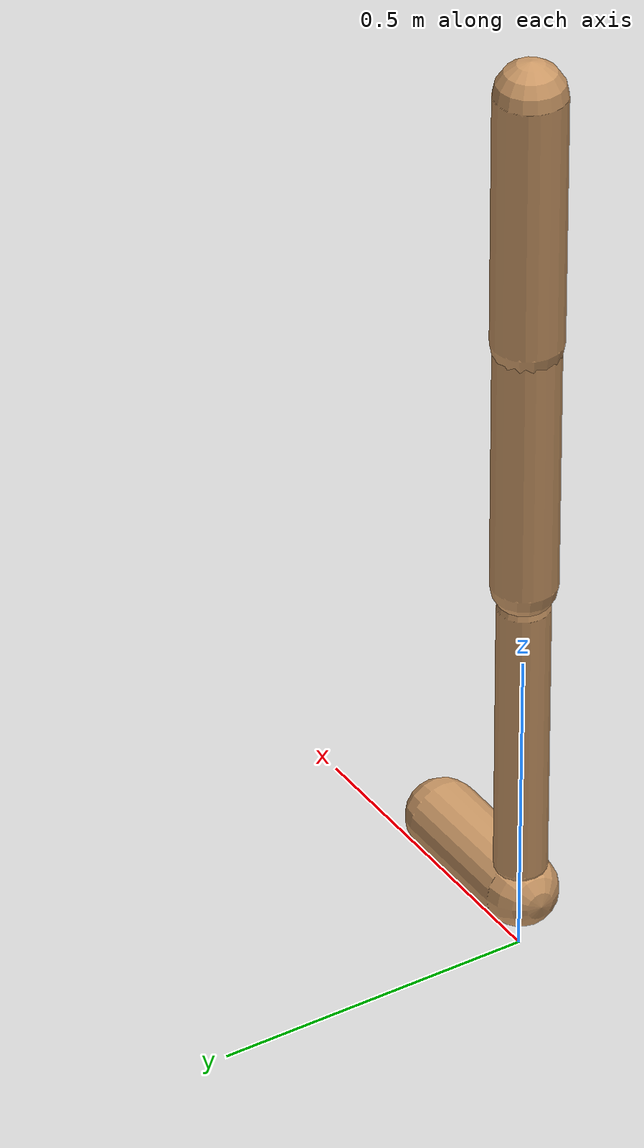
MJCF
<mujoco model="walker2d">
  <compiler angle="degree" coordinate="global" inertiafromgeom="true" />
  <default>
    <joint armature="0.01" damping=".1" limited="true" />
    <geom conaffinity="0" condim="3" contype="1" density="1000" friction="0.8 .1 .1" rgba="0.8 0.6 .4 1" />
  </default>
  <option integrator="RK4" timestep="0.002" />
  <worldbody>

    <body name="torso" pos="0 0 -0.08542266246785327">
      <joint armature="0" axis="1 0 0" damping="0" limited="false" name="ignorex" pos="0 0 0" stiffness="0" type="slide" />
      <joint armature="0" axis="0 0 1" damping="0" limited="false" name="ignorez" pos="0 0 0" ref="1.25" stiffness="0" type="slide" />
      <joint armature="0" axis="0 1 0" damping="0" limited="false" name="ignorey" pos="0 0 0" stiffness="0" type="hinge" />
      <geom fromto="0 0 1.45 0 0 1.05" name="torso_geom" size="0.053272093453431084" type="capsule" />
      <body name="thigh">
        <joint axis="0 -1 0" name="thigh_joint" pos="0 0 1.05" range="-150 0" type="hinge" />
        <geom fromto="0.0 0.0 1.05 0.0 0.0 0.640463366432141" name="thigh_geom" size="0.04959407238694537" type="capsule" />
        <body name="leg" pos="0.0 0.0 0.04046336643214099">
          <joint axis="0 -1 0" name="leg_joint" pos="0 0 0.6" range="-150 0" type="hinge" />
          <geom fromto="0.0 0.0 0.6 0.0 0.0 0.14495929603571225" name="leg_geom" size="0.03967525790955629" type="capsule" />
          <body name="foot" pos="0.0 0.0 0.04495929603571225">
            <joint axis="0 -1 0" name="foot_joint" pos="0 0 0.1" range="-45 45" type="hinge" />
            <geom fromto="-0.0 0.0 0.1 0.2043789151220317 0.0 0.1" name="foot_geom" size="0.05753554081586256" type="capsule" />
          </body>
        </body>
      </body>

      <body name="thigh_left">
        <joint axis="0 -1 0" name="thigh_left_joint" pos="0 0 1.05" range="-150 0" type="hinge" />
        <geom fromto="0.0 0.0 1.05 0.0 0.0 0.640463366432141" name="thigh_left_geom" rgba=".7 .3 .6 1" size="0.04959407238694537" type="capsule" />
        <body name="leg_left" pos="0.0 0.0 0.04046336643214099">
          <joint axis="0 -1 0" name="leg_left_joint" pos="0 0 0.6" range="-150 0" type="hinge" />
          <geom fromto="0.0 0.0 0.6 0.0 0.0 0.14495929603571225" name="leg_left_geom" rgba=".7 .3 .6 1" size="0.03967525790955629" type="capsule" />
          <body name="foot_left" pos="0.0 0.0 0.04495929603571225">
            <joint axis="0 -1 0" name="foot_left_joint" pos="0 0 0.1" range="-45 45" type="hinge" />
            <geom fromto="-0.0 0.0 0.1 0.2043789151220317 0.0 0.1" name="foot_left_geom" rgba=".7 .3 .6 1" size="0.05753554081586256" type="capsule" />
          </body>
        </body>
      </body>
    </body>
  </worldbody>
  <actuator>

    <motor ctrllimited="true" ctrlrange="-1.0 1.0" gear="100" joint="thigh_joint" />
    <motor ctrllimited="true" ctrlrange="-1.0 1.0" gear="100" joint="leg_joint" />
    <motor ctrllimited="true" ctrlrange="-1.0 1.0" gear="100" joint="foot_joint" />
    <motor ctrllimited="true" ctrlrange="-1.0 1.0" gear="100" joint="thigh_left_joint" />
    <motor ctrllimited="true" ctrlrange="-1.0 1.0" gear="100" joint="leg_left_joint" />
    <motor ctrllimited="true" ctrlrange="-1.0 1.0" gear="100" joint="foot_left_joint" />

  </actuator>
</mujoco>
